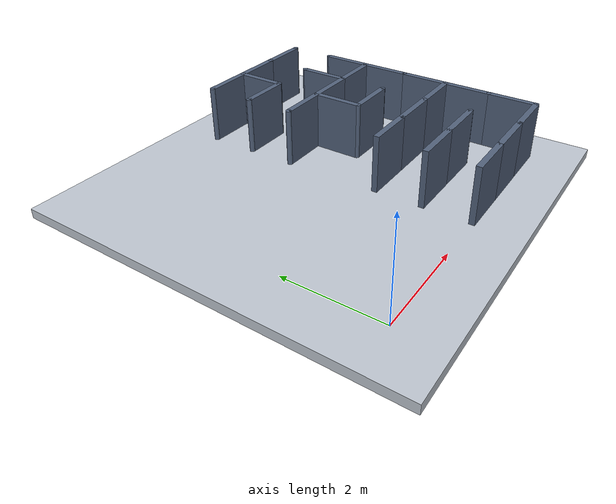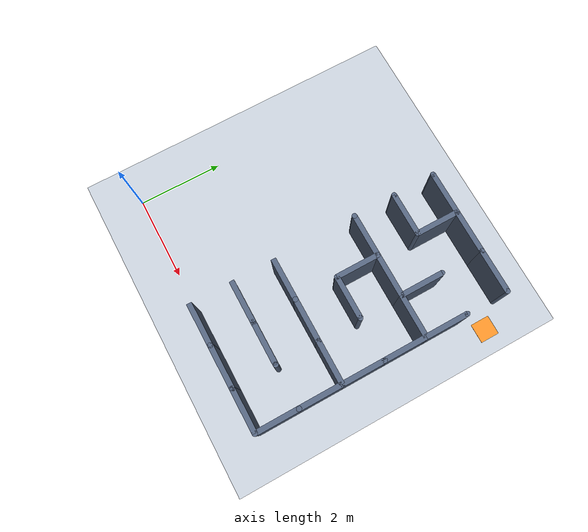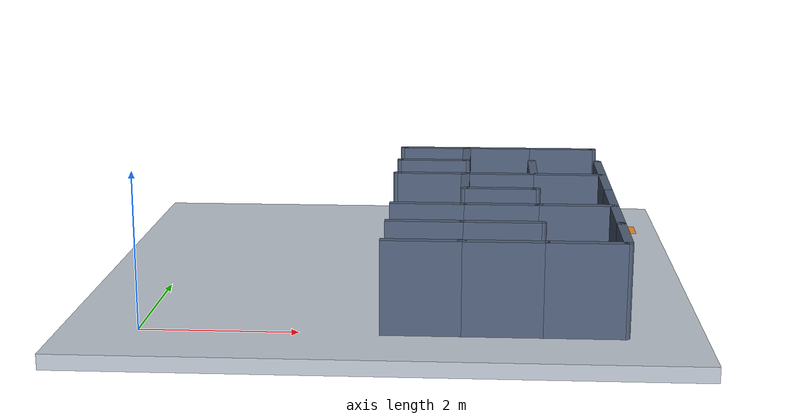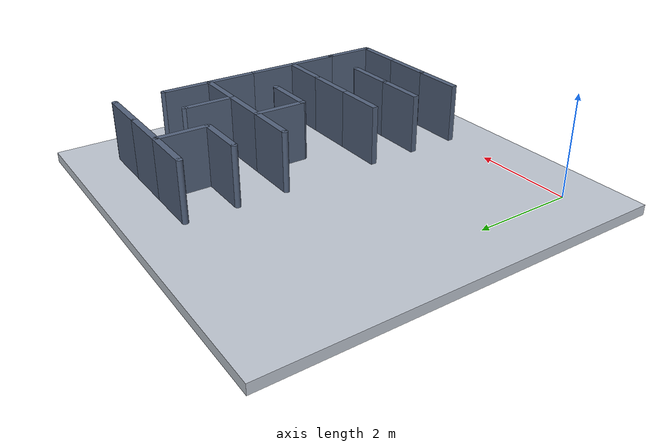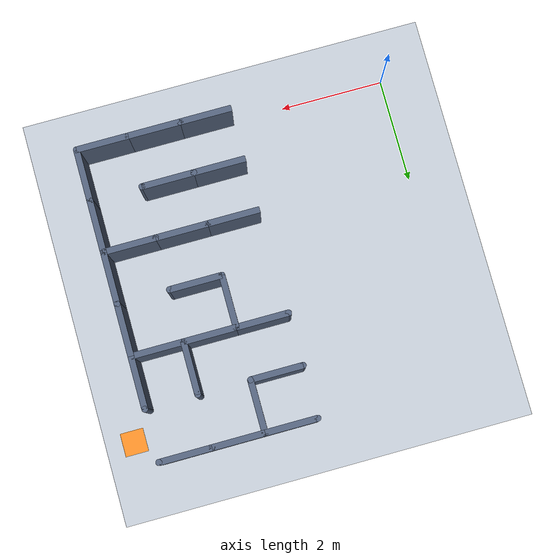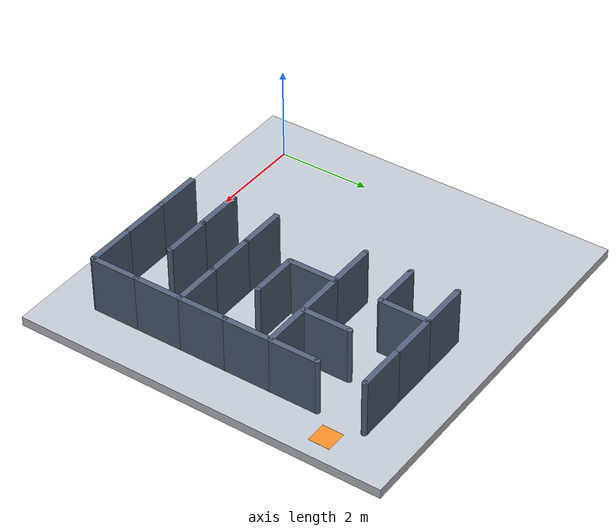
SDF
<sdf version="1.6">
 <world name="maze_6x6">
  <model name="ground_plane">
   <static>true</static>
   <pose>3.000000 3.000000 -0.100000 0.000000 0.000000 0.000000</pose>
   <link name="link">
    <collision name="collision">
     <geometry><box><size>8.000000 8.000000 0.200000</size></box></geometry>
     <surface><friction><ode><mu>1.0</mu><mu2>1.0</mu2></ode></friction></surface>
    </collision>
    <visual name="visual">
     <geometry><box><size>8.000000 8.000000 0.200000</size></box></geometry>
     <material><ambient>0.75 0.78 0.82 1</ambient><diffuse>0.75 0.78 0.82 1</diffuse></material>
    </visual>
   </link>
  </model>
  <model name="wall_022">
   <static>true</static>
   <pose>3.500000 0.000000 0.600000 0.000000 0.000000 0.000000</pose>
   <link name="link">
    <collision name="collision">
     <geometry><box><size>1.000000 0.120000 1.200000</size></box></geometry>
    </collision>
    <visual name="visual">
     <geometry><box><size>1.000000 0.120000 1.200000</size></box></geometry>
     <material><ambient>0.32 0.38 0.48 1</ambient><diffuse>0.32 0.38 0.48 1</diffuse></material>
    </visual>
   </link>
  </model>
  <model name="wall_024">
   <static>true</static>
   <pose>3.500000 1.000000 0.600000 0.000000 0.000000 0.000000</pose>
   <link name="link">
    <collision name="collision">
     <geometry><box><size>1.000000 0.120000 1.200000</size></box></geometry>
    </collision>
    <visual name="visual">
     <geometry><box><size>1.000000 0.120000 1.200000</size></box></geometry>
     <material><ambient>0.32 0.38 0.48 1</ambient><diffuse>0.32 0.38 0.48 1</diffuse></material>
    </visual>
   </link>
  </model>
  <model name="wall_025">
   <static>true</static>
   <pose>3.500000 2.000000 0.600000 0.000000 0.000000 0.000000</pose>
   <link name="link">
    <collision name="collision">
     <geometry><box><size>1.000000 0.120000 1.200000</size></box></geometry>
    </collision>
    <visual name="visual">
     <geometry><box><size>1.000000 0.120000 1.200000</size></box></geometry>
     <material><ambient>0.32 0.38 0.48 1</ambient><diffuse>0.32 0.38 0.48 1</diffuse></material>
    </visual>
   </link>
  </model>
  <model name="wall_026">
   <static>true</static>
   <pose>3.500000 4.000000 0.600000 0.000000 0.000000 0.000000</pose>
   <link name="link">
    <collision name="collision">
     <geometry><box><size>1.000000 0.120000 1.200000</size></box></geometry>
    </collision>
    <visual name="visual">
     <geometry><box><size>1.000000 0.120000 1.200000</size></box></geometry>
     <material><ambient>0.32 0.38 0.48 1</ambient><diffuse>0.32 0.38 0.48 1</diffuse></material>
    </visual>
   </link>
  </model>
  <model name="wall_027">
   <static>true</static>
   <pose>3.500000 5.000000 0.600000 0.000000 0.000000 0.000000</pose>
   <link name="link">
    <collision name="collision">
     <geometry><box><size>1.000000 0.120000 1.200000</size></box></geometry>
    </collision>
    <visual name="visual">
     <geometry><box><size>1.000000 0.120000 1.200000</size></box></geometry>
     <material><ambient>0.32 0.38 0.48 1</ambient><diffuse>0.32 0.38 0.48 1</diffuse></material>
    </visual>
   </link>
  </model>
  <model name="wall_028">
   <static>true</static>
   <pose>3.500000 6.000000 0.600000 0.000000 0.000000 0.000000</pose>
   <link name="link">
    <collision name="collision">
     <geometry><box><size>1.000000 0.120000 1.200000</size></box></geometry>
    </collision>
    <visual name="visual">
     <geometry><box><size>1.000000 0.120000 1.200000</size></box></geometry>
     <material><ambient>0.32 0.38 0.48 1</ambient><diffuse>0.32 0.38 0.48 1</diffuse></material>
    </visual>
   </link>
  </model>
  <model name="wall_029">
   <static>true</static>
   <pose>4.500000 0.000000 0.600000 0.000000 0.000000 0.000000</pose>
   <link name="link">
    <collision name="collision">
     <geometry><box><size>1.000000 0.120000 1.200000</size></box></geometry>
    </collision>
    <visual name="visual">
     <geometry><box><size>1.000000 0.120000 1.200000</size></box></geometry>
     <material><ambient>0.32 0.38 0.48 1</ambient><diffuse>0.32 0.38 0.48 1</diffuse></material>
    </visual>
   </link>
  </model>
  <model name="wall_030">
   <static>true</static>
   <pose>4.500000 1.000000 0.600000 0.000000 0.000000 0.000000</pose>
   <link name="link">
    <collision name="collision">
     <geometry><box><size>1.000000 0.120000 1.200000</size></box></geometry>
    </collision>
    <visual name="visual">
     <geometry><box><size>1.000000 0.120000 1.200000</size></box></geometry>
     <material><ambient>0.32 0.38 0.48 1</ambient><diffuse>0.32 0.38 0.48 1</diffuse></material>
    </visual>
   </link>
  </model>
  <model name="wall_031">
   <static>true</static>
   <pose>4.500000 2.000000 0.600000 0.000000 0.000000 0.000000</pose>
   <link name="link">
    <collision name="collision">
     <geometry><box><size>1.000000 0.120000 1.200000</size></box></geometry>
    </collision>
    <visual name="visual">
     <geometry><box><size>1.000000 0.120000 1.200000</size></box></geometry>
     <material><ambient>0.32 0.38 0.48 1</ambient><diffuse>0.32 0.38 0.48 1</diffuse></material>
    </visual>
   </link>
  </model>
  <model name="wall_032">
   <static>true</static>
   <pose>4.000000 3.500000 0.600000 0.000000 0.000000 0.000000</pose>
   <link name="link">
    <collision name="collision">
     <geometry><box><size>0.120000 1.000000 1.200000</size></box></geometry>
    </collision>
    <visual name="visual">
     <geometry><box><size>0.120000 1.000000 1.200000</size></box></geometry>
     <material><ambient>0.32 0.38 0.48 1</ambient><diffuse>0.32 0.38 0.48 1</diffuse></material>
    </visual>
   </link>
  </model>
  <model name="wall_033">
   <static>true</static>
   <pose>4.500000 3.000000 0.600000 0.000000 0.000000 0.000000</pose>
   <link name="link">
    <collision name="collision">
     <geometry><box><size>1.000000 0.120000 1.200000</size></box></geometry>
    </collision>
    <visual name="visual">
     <geometry><box><size>1.000000 0.120000 1.200000</size></box></geometry>
     <material><ambient>0.32 0.38 0.48 1</ambient><diffuse>0.32 0.38 0.48 1</diffuse></material>
    </visual>
   </link>
  </model>
  <model name="wall_034">
   <static>true</static>
   <pose>4.500000 4.000000 0.600000 0.000000 0.000000 0.000000</pose>
   <link name="link">
    <collision name="collision">
     <geometry><box><size>1.000000 0.120000 1.200000</size></box></geometry>
    </collision>
    <visual name="visual">
     <geometry><box><size>1.000000 0.120000 1.200000</size></box></geometry>
     <material><ambient>0.32 0.38 0.48 1</ambient><diffuse>0.32 0.38 0.48 1</diffuse></material>
    </visual>
   </link>
  </model>
  <model name="wall_035">
   <static>true</static>
   <pose>4.000000 5.500000 0.600000 0.000000 0.000000 0.000000</pose>
   <link name="link">
    <collision name="collision">
     <geometry><box><size>0.120000 1.000000 1.200000</size></box></geometry>
    </collision>
    <visual name="visual">
     <geometry><box><size>0.120000 1.000000 1.200000</size></box></geometry>
     <material><ambient>0.32 0.38 0.48 1</ambient><diffuse>0.32 0.38 0.48 1</diffuse></material>
    </visual>
   </link>
  </model>
  <model name="wall_036">
   <static>true</static>
   <pose>4.500000 6.000000 0.600000 0.000000 0.000000 0.000000</pose>
   <link name="link">
    <collision name="collision">
     <geometry><box><size>1.000000 0.120000 1.200000</size></box></geometry>
    </collision>
    <visual name="visual">
     <geometry><box><size>1.000000 0.120000 1.200000</size></box></geometry>
     <material><ambient>0.32 0.38 0.48 1</ambient><diffuse>0.32 0.38 0.48 1</diffuse></material>
    </visual>
   </link>
  </model>
  <model name="wall_037">
   <static>true</static>
   <pose>5.500000 0.000000 0.600000 0.000000 0.000000 0.000000</pose>
   <link name="link">
    <collision name="collision">
     <geometry><box><size>1.000000 0.120000 1.200000</size></box></geometry>
    </collision>
    <visual name="visual">
     <geometry><box><size>1.000000 0.120000 1.200000</size></box></geometry>
     <material><ambient>0.32 0.38 0.48 1</ambient><diffuse>0.32 0.38 0.48 1</diffuse></material>
    </visual>
   </link>
  </model>
  <model name="wall_038">
   <static>true</static>
   <pose>5.500000 2.000000 0.600000 0.000000 0.000000 0.000000</pose>
   <link name="link">
    <collision name="collision">
     <geometry><box><size>1.000000 0.120000 1.200000</size></box></geometry>
    </collision>
    <visual name="visual">
     <geometry><box><size>1.000000 0.120000 1.200000</size></box></geometry>
     <material><ambient>0.32 0.38 0.48 1</ambient><diffuse>0.32 0.38 0.48 1</diffuse></material>
    </visual>
   </link>
  </model>
  <model name="wall_039">
   <static>true</static>
   <pose>5.000000 4.500000 0.600000 0.000000 0.000000 0.000000</pose>
   <link name="link">
    <collision name="collision">
     <geometry><box><size>0.120000 1.000000 1.200000</size></box></geometry>
    </collision>
    <visual name="visual">
     <geometry><box><size>0.120000 1.000000 1.200000</size></box></geometry>
     <material><ambient>0.32 0.38 0.48 1</ambient><diffuse>0.32 0.38 0.48 1</diffuse></material>
    </visual>
   </link>
  </model>
  <model name="wall_040">
   <static>true</static>
   <pose>5.500000 4.000000 0.600000 0.000000 0.000000 0.000000</pose>
   <link name="link">
    <collision name="collision">
     <geometry><box><size>1.000000 0.120000 1.200000</size></box></geometry>
    </collision>
    <visual name="visual">
     <geometry><box><size>1.000000 0.120000 1.200000</size></box></geometry>
     <material><ambient>0.32 0.38 0.48 1</ambient><diffuse>0.32 0.38 0.48 1</diffuse></material>
    </visual>
   </link>
  </model>
  <model name="wall_041">
   <static>true</static>
   <pose>5.500000 6.000000 0.600000 0.000000 0.000000 0.000000</pose>
   <link name="link">
    <collision name="collision">
     <geometry><box><size>1.000000 0.120000 1.200000</size></box></geometry>
    </collision>
    <visual name="visual">
     <geometry><box><size>1.000000 0.120000 1.200000</size></box></geometry>
     <material><ambient>0.32 0.38 0.48 1</ambient><diffuse>0.32 0.38 0.48 1</diffuse></material>
    </visual>
   </link>
  </model>
  <model name="wall_042">
   <static>true</static>
   <pose>6.000000 0.500000 0.600000 0.000000 0.000000 0.000000</pose>
   <link name="link">
    <collision name="collision">
     <geometry><box><size>0.120000 1.000000 1.200000</size></box></geometry>
    </collision>
    <visual name="visual">
     <geometry><box><size>0.120000 1.000000 1.200000</size></box></geometry>
     <material><ambient>0.32 0.38 0.48 1</ambient><diffuse>0.32 0.38 0.48 1</diffuse></material>
    </visual>
   </link>
  </model>
  <model name="wall_043">
   <static>true</static>
   <pose>6.000000 1.500000 0.600000 0.000000 0.000000 0.000000</pose>
   <link name="link">
    <collision name="collision">
     <geometry><box><size>0.120000 1.000000 1.200000</size></box></geometry>
    </collision>
    <visual name="visual">
     <geometry><box><size>0.120000 1.000000 1.200000</size></box></geometry>
     <material><ambient>0.32 0.38 0.48 1</ambient><diffuse>0.32 0.38 0.48 1</diffuse></material>
    </visual>
   </link>
  </model>
  <model name="wall_044">
   <static>true</static>
   <pose>6.000000 2.500000 0.600000 0.000000 0.000000 0.000000</pose>
   <link name="link">
    <collision name="collision">
     <geometry><box><size>0.120000 1.000000 1.200000</size></box></geometry>
    </collision>
    <visual name="visual">
     <geometry><box><size>0.120000 1.000000 1.200000</size></box></geometry>
     <material><ambient>0.32 0.38 0.48 1</ambient><diffuse>0.32 0.38 0.48 1</diffuse></material>
    </visual>
   </link>
  </model>
  <model name="wall_045">
   <static>true</static>
   <pose>6.000000 3.500000 0.600000 0.000000 0.000000 0.000000</pose>
   <link name="link">
    <collision name="collision">
     <geometry><box><size>0.120000 1.000000 1.200000</size></box></geometry>
    </collision>
    <visual name="visual">
     <geometry><box><size>0.120000 1.000000 1.200000</size></box></geometry>
     <material><ambient>0.32 0.38 0.48 1</ambient><diffuse>0.32 0.38 0.48 1</diffuse></material>
    </visual>
   </link>
  </model>
  <model name="wall_046">
   <static>true</static>
   <pose>6.000000 4.500000 0.600000 0.000000 0.000000 0.000000</pose>
   <link name="link">
    <collision name="collision">
     <geometry><box><size>0.120000 1.000000 1.200000</size></box></geometry>
    </collision>
    <visual name="visual">
     <geometry><box><size>0.120000 1.000000 1.200000</size></box></geometry>
     <material><ambient>0.32 0.38 0.48 1</ambient><diffuse>0.32 0.38 0.48 1</diffuse></material>
    </visual>
   </link>
  </model>
  <model name="pillar_025">
   <static>true</static>
   <pose>3.000000 4.000000 0.600000 0.000000 0.000000 0.000000</pose>
   <link name="link">
    <collision name="collision">
     <geometry><cylinder><radius>0.060000</radius><length>1.200000</length></cylinder></geometry>
    </collision>
    <visual name="visual">
     <geometry><cylinder><radius>0.060000</radius><length>1.200000</length></cylinder></geometry>
     <material><ambient>0.32 0.38 0.48 1</ambient><diffuse>0.32 0.38 0.48 1</diffuse></material>
    </visual>
   </link>
  </model>
  <model name="pillar_026">
   <static>true</static>
   <pose>3.000000 5.000000 0.600000 0.000000 0.000000 0.000000</pose>
   <link name="link">
    <collision name="collision">
     <geometry><cylinder><radius>0.060000</radius><length>1.200000</length></cylinder></geometry>
    </collision>
    <visual name="visual">
     <geometry><cylinder><radius>0.060000</radius><length>1.200000</length></cylinder></geometry>
     <material><ambient>0.32 0.38 0.48 1</ambient><diffuse>0.32 0.38 0.48 1</diffuse></material>
    </visual>
   </link>
  </model>
  <model name="pillar_027">
   <static>true</static>
   <pose>3.000000 6.000000 0.600000 0.000000 0.000000 0.000000</pose>
   <link name="link">
    <collision name="collision">
     <geometry><cylinder><radius>0.060000</radius><length>1.200000</length></cylinder></geometry>
    </collision>
    <visual name="visual">
     <geometry><cylinder><radius>0.060000</radius><length>1.200000</length></cylinder></geometry>
     <material><ambient>0.32 0.38 0.48 1</ambient><diffuse>0.32 0.38 0.48 1</diffuse></material>
    </visual>
   </link>
  </model>
  <model name="pillar_028">
   <static>true</static>
   <pose>4.000000 0.000000 0.600000 0.000000 0.000000 0.000000</pose>
   <link name="link">
    <collision name="collision">
     <geometry><cylinder><radius>0.060000</radius><length>1.200000</length></cylinder></geometry>
    </collision>
    <visual name="visual">
     <geometry><cylinder><radius>0.060000</radius><length>1.200000</length></cylinder></geometry>
     <material><ambient>0.32 0.38 0.48 1</ambient><diffuse>0.32 0.38 0.48 1</diffuse></material>
    </visual>
   </link>
  </model>
  <model name="pillar_029">
   <static>true</static>
   <pose>4.000000 1.000000 0.600000 0.000000 0.000000 0.000000</pose>
   <link name="link">
    <collision name="collision">
     <geometry><cylinder><radius>0.060000</radius><length>1.200000</length></cylinder></geometry>
    </collision>
    <visual name="visual">
     <geometry><cylinder><radius>0.060000</radius><length>1.200000</length></cylinder></geometry>
     <material><ambient>0.32 0.38 0.48 1</ambient><diffuse>0.32 0.38 0.48 1</diffuse></material>
    </visual>
   </link>
  </model>
  <model name="pillar_030">
   <static>true</static>
   <pose>4.000000 2.000000 0.600000 0.000000 0.000000 0.000000</pose>
   <link name="link">
    <collision name="collision">
     <geometry><cylinder><radius>0.060000</radius><length>1.200000</length></cylinder></geometry>
    </collision>
    <visual name="visual">
     <geometry><cylinder><radius>0.060000</radius><length>1.200000</length></cylinder></geometry>
     <material><ambient>0.32 0.38 0.48 1</ambient><diffuse>0.32 0.38 0.48 1</diffuse></material>
    </visual>
   </link>
  </model>
  <model name="pillar_031">
   <static>true</static>
   <pose>4.000000 3.000000 0.600000 0.000000 0.000000 0.000000</pose>
   <link name="link">
    <collision name="collision">
     <geometry><cylinder><radius>0.060000</radius><length>1.200000</length></cylinder></geometry>
    </collision>
    <visual name="visual">
     <geometry><cylinder><radius>0.060000</radius><length>1.200000</length></cylinder></geometry>
     <material><ambient>0.32 0.38 0.48 1</ambient><diffuse>0.32 0.38 0.48 1</diffuse></material>
    </visual>
   </link>
  </model>
  <model name="pillar_032">
   <static>true</static>
   <pose>4.000000 4.000000 0.600000 0.000000 0.000000 0.000000</pose>
   <link name="link">
    <collision name="collision">
     <geometry><cylinder><radius>0.060000</radius><length>1.200000</length></cylinder></geometry>
    </collision>
    <visual name="visual">
     <geometry><cylinder><radius>0.060000</radius><length>1.200000</length></cylinder></geometry>
     <material><ambient>0.32 0.38 0.48 1</ambient><diffuse>0.32 0.38 0.48 1</diffuse></material>
    </visual>
   </link>
  </model>
  <model name="pillar_033">
   <static>true</static>
   <pose>4.000000 5.000000 0.600000 0.000000 0.000000 0.000000</pose>
   <link name="link">
    <collision name="collision">
     <geometry><cylinder><radius>0.060000</radius><length>1.200000</length></cylinder></geometry>
    </collision>
    <visual name="visual">
     <geometry><cylinder><radius>0.060000</radius><length>1.200000</length></cylinder></geometry>
     <material><ambient>0.32 0.38 0.48 1</ambient><diffuse>0.32 0.38 0.48 1</diffuse></material>
    </visual>
   </link>
  </model>
  <model name="pillar_034">
   <static>true</static>
   <pose>4.000000 6.000000 0.600000 0.000000 0.000000 0.000000</pose>
   <link name="link">
    <collision name="collision">
     <geometry><cylinder><radius>0.060000</radius><length>1.200000</length></cylinder></geometry>
    </collision>
    <visual name="visual">
     <geometry><cylinder><radius>0.060000</radius><length>1.200000</length></cylinder></geometry>
     <material><ambient>0.32 0.38 0.48 1</ambient><diffuse>0.32 0.38 0.48 1</diffuse></material>
    </visual>
   </link>
  </model>
  <model name="pillar_035">
   <static>true</static>
   <pose>5.000000 0.000000 0.600000 0.000000 0.000000 0.000000</pose>
   <link name="link">
    <collision name="collision">
     <geometry><cylinder><radius>0.060000</radius><length>1.200000</length></cylinder></geometry>
    </collision>
    <visual name="visual">
     <geometry><cylinder><radius>0.060000</radius><length>1.200000</length></cylinder></geometry>
     <material><ambient>0.32 0.38 0.48 1</ambient><diffuse>0.32 0.38 0.48 1</diffuse></material>
    </visual>
   </link>
  </model>
  <model name="pillar_036">
   <static>true</static>
   <pose>5.000000 1.000000 0.600000 0.000000 0.000000 0.000000</pose>
   <link name="link">
    <collision name="collision">
     <geometry><cylinder><radius>0.060000</radius><length>1.200000</length></cylinder></geometry>
    </collision>
    <visual name="visual">
     <geometry><cylinder><radius>0.060000</radius><length>1.200000</length></cylinder></geometry>
     <material><ambient>0.32 0.38 0.48 1</ambient><diffuse>0.32 0.38 0.48 1</diffuse></material>
    </visual>
   </link>
  </model>
  <model name="pillar_037">
   <static>true</static>
   <pose>5.000000 2.000000 0.600000 0.000000 0.000000 0.000000</pose>
   <link name="link">
    <collision name="collision">
     <geometry><cylinder><radius>0.060000</radius><length>1.200000</length></cylinder></geometry>
    </collision>
    <visual name="visual">
     <geometry><cylinder><radius>0.060000</radius><length>1.200000</length></cylinder></geometry>
     <material><ambient>0.32 0.38 0.48 1</ambient><diffuse>0.32 0.38 0.48 1</diffuse></material>
    </visual>
   </link>
  </model>
  <model name="pillar_038">
   <static>true</static>
   <pose>5.000000 3.000000 0.600000 0.000000 0.000000 0.000000</pose>
   <link name="link">
    <collision name="collision">
     <geometry><cylinder><radius>0.060000</radius><length>1.200000</length></cylinder></geometry>
    </collision>
    <visual name="visual">
     <geometry><cylinder><radius>0.060000</radius><length>1.200000</length></cylinder></geometry>
     <material><ambient>0.32 0.38 0.48 1</ambient><diffuse>0.32 0.38 0.48 1</diffuse></material>
    </visual>
   </link>
  </model>
  <model name="pillar_039">
   <static>true</static>
   <pose>5.000000 4.000000 0.600000 0.000000 0.000000 0.000000</pose>
   <link name="link">
    <collision name="collision">
     <geometry><cylinder><radius>0.060000</radius><length>1.200000</length></cylinder></geometry>
    </collision>
    <visual name="visual">
     <geometry><cylinder><radius>0.060000</radius><length>1.200000</length></cylinder></geometry>
     <material><ambient>0.32 0.38 0.48 1</ambient><diffuse>0.32 0.38 0.48 1</diffuse></material>
    </visual>
   </link>
  </model>
  <model name="pillar_040">
   <static>true</static>
   <pose>5.000000 5.000000 0.600000 0.000000 0.000000 0.000000</pose>
   <link name="link">
    <collision name="collision">
     <geometry><cylinder><radius>0.060000</radius><length>1.200000</length></cylinder></geometry>
    </collision>
    <visual name="visual">
     <geometry><cylinder><radius>0.060000</radius><length>1.200000</length></cylinder></geometry>
     <material><ambient>0.32 0.38 0.48 1</ambient><diffuse>0.32 0.38 0.48 1</diffuse></material>
    </visual>
   </link>
  </model>
  <model name="pillar_041">
   <static>true</static>
   <pose>5.000000 6.000000 0.600000 0.000000 0.000000 0.000000</pose>
   <link name="link">
    <collision name="collision">
     <geometry><cylinder><radius>0.060000</radius><length>1.200000</length></cylinder></geometry>
    </collision>
    <visual name="visual">
     <geometry><cylinder><radius>0.060000</radius><length>1.200000</length></cylinder></geometry>
     <material><ambient>0.32 0.38 0.48 1</ambient><diffuse>0.32 0.38 0.48 1</diffuse></material>
    </visual>
   </link>
  </model>
  <model name="pillar_042">
   <static>true</static>
   <pose>6.000000 0.000000 0.600000 0.000000 0.000000 0.000000</pose>
   <link name="link">
    <collision name="collision">
     <geometry><cylinder><radius>0.060000</radius><length>1.200000</length></cylinder></geometry>
    </collision>
    <visual name="visual">
     <geometry><cylinder><radius>0.060000</radius><length>1.200000</length></cylinder></geometry>
     <material><ambient>0.32 0.38 0.48 1</ambient><diffuse>0.32 0.38 0.48 1</diffuse></material>
    </visual>
   </link>
  </model>
  <model name="pillar_043">
   <static>true</static>
   <pose>6.000000 1.000000 0.600000 0.000000 0.000000 0.000000</pose>
   <link name="link">
    <collision name="collision">
     <geometry><cylinder><radius>0.060000</radius><length>1.200000</length></cylinder></geometry>
    </collision>
    <visual name="visual">
     <geometry><cylinder><radius>0.060000</radius><length>1.200000</length></cylinder></geometry>
     <material><ambient>0.32 0.38 0.48 1</ambient><diffuse>0.32 0.38 0.48 1</diffuse></material>
    </visual>
   </link>
  </model>
  <model name="pillar_044">
   <static>true</static>
   <pose>6.000000 2.000000 0.600000 0.000000 0.000000 0.000000</pose>
   <link name="link">
    <collision name="collision">
     <geometry><cylinder><radius>0.060000</radius><length>1.200000</length></cylinder></geometry>
    </collision>
    <visual name="visual">
     <geometry><cylinder><radius>0.060000</radius><length>1.200000</length></cylinder></geometry>
     <material><ambient>0.32 0.38 0.48 1</ambient><diffuse>0.32 0.38 0.48 1</diffuse></material>
    </visual>
   </link>
  </model>
  <model name="pillar_045">
   <static>true</static>
   <pose>6.000000 3.000000 0.600000 0.000000 0.000000 0.000000</pose>
   <link name="link">
    <collision name="collision">
     <geometry><cylinder><radius>0.060000</radius><length>1.200000</length></cylinder></geometry>
    </collision>
    <visual name="visual">
     <geometry><cylinder><radius>0.060000</radius><length>1.200000</length></cylinder></geometry>
     <material><ambient>0.32 0.38 0.48 1</ambient><diffuse>0.32 0.38 0.48 1</diffuse></material>
    </visual>
   </link>
  </model>
  <model name="pillar_046">
   <static>true</static>
   <pose>6.000000 4.000000 0.600000 0.000000 0.000000 0.000000</pose>
   <link name="link">
    <collision name="collision">
     <geometry><cylinder><radius>0.060000</radius><length>1.200000</length></cylinder></geometry>
    </collision>
    <visual name="visual">
     <geometry><cylinder><radius>0.060000</radius><length>1.200000</length></cylinder></geometry>
     <material><ambient>0.32 0.38 0.48 1</ambient><diffuse>0.32 0.38 0.48 1</diffuse></material>
    </visual>
   </link>
  </model>
  <model name="pillar_047">
   <static>true</static>
   <pose>6.000000 5.000000 0.600000 0.000000 0.000000 0.000000</pose>
   <link name="link">
    <collision name="collision">
     <geometry><cylinder><radius>0.060000</radius><length>1.200000</length></cylinder></geometry>
    </collision>
    <visual name="visual">
     <geometry><cylinder><radius>0.060000</radius><length>1.200000</length></cylinder></geometry>
     <material><ambient>0.32 0.38 0.48 1</ambient><diffuse>0.32 0.38 0.48 1</diffuse></material>
    </visual>
   </link>
  </model>
  <model name="pillar_048">
   <static>true</static>
   <pose>6.000000 6.000000 0.600000 0.000000 0.000000 0.000000</pose>
   <link name="link">
    <collision name="collision">
     <geometry><cylinder><radius>0.060000</radius><length>1.200000</length></cylinder></geometry>
    </collision>
    <visual name="visual">
     <geometry><cylinder><radius>0.060000</radius><length>1.200000</length></cylinder></geometry>
     <material><ambient>0.32 0.38 0.48 1</ambient><diffuse>0.32 0.38 0.48 1</diffuse></material>
    </visual>
   </link>
  </model>
  <model name="marker_exit">
   <static>true</static>
   <pose>6.450000 5.500000 0.001000 0.000000 0.000000 0.000000</pose>
   <link name="link">
    <visual name="visual">
     <geometry><box><size>0.450000 0.450000 0.002000</size></box></geometry>
     <material><ambient>0.95 0.55 0.15 1</ambient><diffuse>0.95 0.55 0.15 1</diffuse></material>
    </visual>
   </link>
  </model>
 </world>
</sdf>
